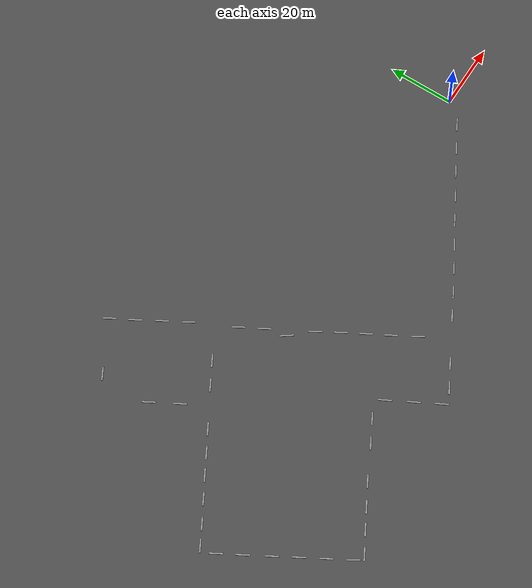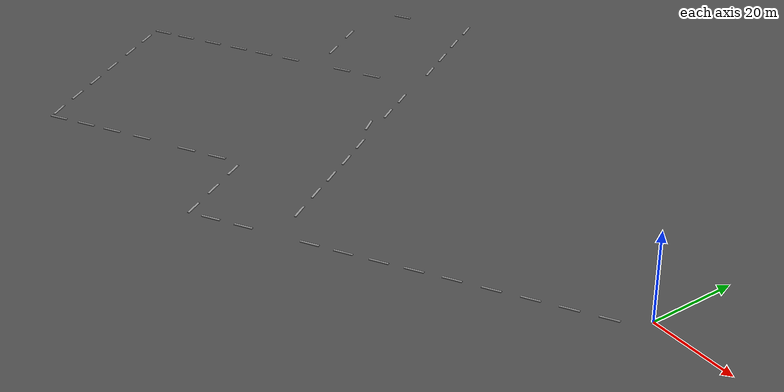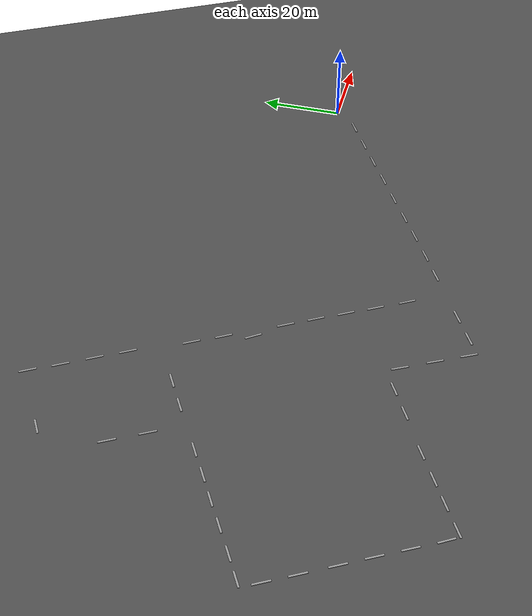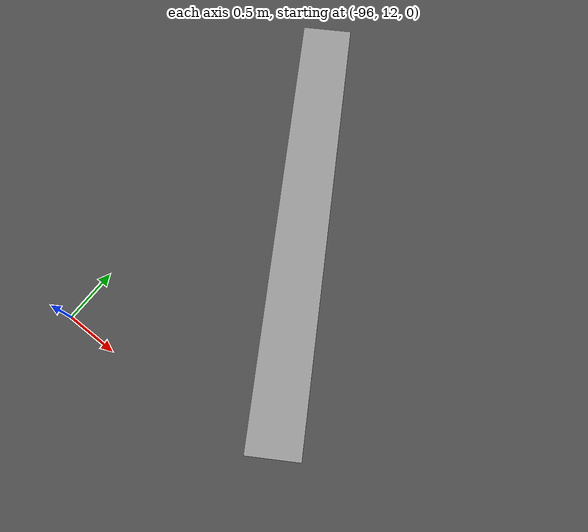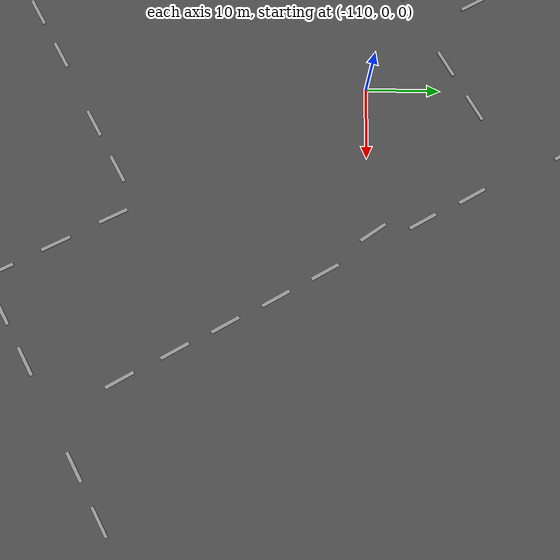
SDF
<sdf version="1.6">
 <world name="default">
  <light name="sun" type="directional">
   <pose>0 0 10 0 -0 0</pose>
   <diffuse>0.8 0.8 0.8 1</diffuse>
   <specular>0.2 0.2 0.2 1</specular>
   <attenuation>
    <range>1000</range>
    <constant>0.9</constant>
    <linear>0.01</linear>
    <quadratic>0.001</quadratic>
   </attenuation>
   <direction>-0.5 0.1 -0.9</direction>
  </light>
  <gravity>0 0 -9.8</gravity>
  <magnetic_field>6e-06 2.3e-05 -4.2e-05</magnetic_field>
  <atmosphere type="adiabatic"/>
  <physics name="default_physics" default="0" type="ode">
   <max_step_size>0.001</max_step_size>
   <real_time_factor>1</real_time_factor>
   <real_time_update_rate>1000</real_time_update_rate>
   <ode>
    <solver>
     <type>quick</type>
     <iters>100</iters>
     <sor>1.3</sor>
     <use_dynamic_moi_rescaling>0</use_dynamic_moi_rescaling>
    </solver>
    <constraints>
     <cfm>0</cfm>
     <erp>0.2</erp>
     <contact_max_correcting_vel>100</contact_max_correcting_vel>
     <contact_surface_layer>0.001</contact_surface_layer>
    </constraints>
   </ode>
  </physics>
  <scene><ambient>0.4 0.4 0.4 1</ambient><background>0.7 0.7 0.7 1</background><shadows>1</shadows></scene>
  <spherical_coordinates>
   <surface_model>EARTH_WGS84</surface_model>
   <latitude_deg>10.7755</latitude_deg>
   <longitude_deg>106.66</longitude_deg>
   <elevation>0.5</elevation>
   <heading_deg>90</heading_deg>
  </spherical_coordinates>
  <model name="asphalt_plane">
   <static>1</static>
   <link name="link">
    <collision name="collision"><geometry><box><size>300.002 399.998 0.1</size></box></geometry></collision>
    <visual name="visual">
     <cast_shadows>0</cast_shadows>
     <geometry><box><size>300.002 399.998 0.1</size></box></geometry>
     <material>
      <script>
       <uri>model://asphalt_plane/materials/scripts</uri>
       <uri>model://asphalt_plane/materials/textures</uri>
       <name>vrc/asphalt</name>
      </script>
     </material>
    </visual>
   </link>
   <pose>-94.7689 -9.25711 0 0 -0 0.505117</pose>
  </model>
  <model name="unit_box">
   <pose>-58.6797 -36.3176 0.134718 0 2e-06 0.511027</pose>
   <link name="link">
    <inertial>
     <mass>1</mass>
     <inertia>
      <ixx>0.166667</ixx>
      <ixy>0</ixy>
      <ixz>0</ixz>
      <iyy>0.166667</iyy>
      <iyz>0</iyz>
      <izz>0.166667</izz>
     </inertia>
    </inertial>
    <collision name="collision"><geometry><box><size>4.10992 0.470748 0.169445</size></box></geometry></collision>
    <visual name="visual">
     <geometry><box><size>4.10992 0.470748 0.169445</size></box></geometry>
     <material>
      <script><name>Gazebo/Grey</name><uri>file://media/materials/scripts/gazebo.material</uri></script>
     </material>
    </visual>
   </link>
  </model>
  <model name="unit_box_clone">
   <pose>-52.2343 -32.8003 0.134718 0 2e-06 0.511043</pose>
   <link name="link">
    <inertial>
     <mass>1</mass>
     <inertia>
      <ixx>0.166667</ixx>
      <ixy>0</ixy>
      <ixz>0</ixz>
      <iyy>0.166667</iyy>
      <iyz>0</iyz>
      <izz>0.166667</izz>
     </inertia>
    </inertial>
    <collision name="collision"><geometry><box><size>4.10992 0.423623 0.169445</size></box></geometry></collision>
    <visual name="visual">
     <geometry><box><size>4.10992 0.423623 0.169445</size></box></geometry>
     <material>
      <script><name>Gazebo/Grey</name><uri>file://media/materials/scripts/gazebo.material</uri></script>
     </material>
    </visual>
   </link>
  </model>
  <model name="unit_box_clone_clone">
   <pose>-45.605 -29.0457 0.134718 0 2e-06 0.511033</pose>
   <link name="link">
    <inertial>
     <mass>1</mass>
     <inertia>
      <ixx>0.166667</ixx>
      <ixy>0</ixy>
      <ixz>0</ixz>
      <iyy>0.166667</iyy>
      <iyz>0</iyz>
      <izz>0.166667</izz>
     </inertia>
    </inertial>
    <collision name="collision"><geometry><box><size>4.10992 0.423624 0.169445</size></box></geometry></collision>
    <visual name="visual">
     <geometry><box><size>4.10992 0.423624 0.169445</size></box></geometry>
     <material>
      <script><name>Gazebo/Grey</name><uri>file://media/materials/scripts/gazebo.material</uri></script>
     </material>
    </visual>
   </link>
  </model>
  <model name="unit_box_clone_clone_0">
   <pose>-39.235 -25.3332 0.134718 -0 2e-06 0.511035</pose>
   <link name="link">
    <inertial>
     <mass>1</mass>
     <inertia>
      <ixx>0.166667</ixx>
      <ixy>0</ixy>
      <ixz>0</ixz>
      <iyy>0.166667</iyy>
      <iyz>0</iyz>
      <izz>0.166667</izz>
     </inertia>
    </inertial>
    <collision name="collision"><geometry><box><size>4.10992 0.423624 0.169445</size></box></geometry></collision>
    <visual name="visual">
     <geometry><box><size>4.10992 0.423624 0.169445</size></box></geometry>
     <material>
      <script><name>Gazebo/Grey</name><uri>file://media/materials/scripts/gazebo.material</uri></script>
     </material>
    </visual>
   </link>
  </model>
  <model name="unit_box_clone_clone_1">
   <pose>-32.4914 -21.3831 0.134718 0 2e-06 0.511036</pose>
   <link name="link">
    <inertial>
     <mass>1</mass>
     <inertia>
      <ixx>0.166667</ixx>
      <ixy>0</ixy>
      <ixz>0</ixz>
      <iyy>0.166667</iyy>
      <iyz>0</iyz>
      <izz>0.166667</izz>
     </inertia>
    </inertial>
    <collision name="collision"><geometry><box><size>4.10992 0.423624 0.169445</size></box></geometry></collision>
    <visual name="visual">
     <geometry><box><size>4.10992 0.423624 0.169445</size></box></geometry>
     <material>
      <script><name>Gazebo/Grey</name><uri>file://media/materials/scripts/gazebo.material</uri></script>
     </material>
    </visual>
   </link>
  </model>
  <model name="unit_box_clone_clone_2">
   <pose>-25.515 -17.4444 0.134718 0 2e-06 0.511038</pose>
   <link name="link">
    <inertial>
     <mass>1</mass>
     <inertia>
      <ixx>0.166667</ixx>
      <ixy>0</ixy>
      <ixz>0</ixz>
      <iyy>0.166667</iyy>
      <iyz>0</iyz>
      <izz>0.166667</izz>
     </inertia>
    </inertial>
    <collision name="collision"><geometry><box><size>4.10992 0.423624 0.169445</size></box></geometry></collision>
    <visual name="visual">
     <geometry><box><size>4.10992 0.423624 0.169445</size></box></geometry>
     <material>
      <script><name>Gazebo/Grey</name><uri>file://media/materials/scripts/gazebo.material</uri></script>
     </material>
    </visual>
   </link>
  </model>
  <model name="unit_box_clone_clone_3">
   <pose>-18.7815 -13.4967 0.134718 0 2e-06 0.511039</pose>
   <link name="link">
    <inertial>
     <mass>1</mass>
     <inertia>
      <ixx>0.166667</ixx>
      <ixy>0</ixy>
      <ixz>0</ixz>
      <iyy>0.166667</iyy>
      <iyz>0</iyz>
      <izz>0.166667</izz>
     </inertia>
    </inertial>
    <collision name="collision"><geometry><box><size>4.10992 0.423624 0.169445</size></box></geometry></collision>
    <visual name="visual">
     <geometry><box><size>4.10992 0.423624 0.169445</size></box></geometry>
     <material>
      <script><name>Gazebo/Grey</name><uri>file://media/materials/scripts/gazebo.material</uri></script>
     </material>
    </visual>
   </link>
  </model>
  <model name="unit_box_clone_clone_4">
   <pose>-12.1267 -9.70198 0.134718 0 2e-06 0.511041</pose>
   <link name="link">
    <inertial>
     <mass>1</mass>
     <inertia>
      <ixx>0.166667</ixx>
      <ixy>0</ixy>
      <ixz>0</ixz>
      <iyy>0.166667</iyy>
      <iyz>0</iyz>
      <izz>0.166667</izz>
     </inertia>
    </inertial>
    <collision name="collision"><geometry><box><size>4.10992 0.423624 0.169445</size></box></geometry></collision>
    <visual name="visual">
     <geometry><box><size>4.10992 0.423624 0.169445</size></box></geometry>
     <material>
      <script><name>Gazebo/Grey</name><uri>file://media/materials/scripts/gazebo.material</uri></script>
     </material>
    </visual>
   </link>
  </model>
  <model name="unit_box_clone_clone_5">
   <pose>-5.35609 -5.84925 0.134718 -0 2e-06 0.511042</pose>
   <link name="link">
    <inertial>
     <mass>1</mass>
     <inertia>
      <ixx>0.166667</ixx>
      <ixy>0</ixy>
      <ixz>0</ixz>
      <iyy>0.166667</iyy>
      <iyz>0</iyz>
      <izz>0.166667</izz>
     </inertia>
    </inertial>
    <collision name="collision"><geometry><box><size>4.10992 0.423624 0.169445</size></box></geometry></collision>
    <visual name="visual">
     <geometry><box><size>4.10992 0.423624 0.169445</size></box></geometry>
     <material>
      <script><name>Gazebo/Grey</name><uri>file://media/materials/scripts/gazebo.material</uri></script>
     </material>
    </visual>
   </link>
  </model>
  <model name="unit_box_clone_0">
   <pose>-71.6412 -43.4655 0.134718 0 2e-06 0.511022</pose>
   <link name="link">
    <inertial>
     <mass>1</mass>
     <inertia>
      <ixx>0.166667</ixx>
      <ixy>0</ixy>
      <ixz>0</ixz>
      <iyy>0.166667</iyy>
      <iyz>0</iyz>
      <izz>0.166667</izz>
     </inertia>
    </inertial>
    <collision name="collision"><geometry><box><size>4.10992 0.470749 0.169445</size></box></geometry></collision>
    <visual name="visual">
     <geometry><box><size>4.10992 0.470749 0.169445</size></box></geometry>
     <material>
      <script><name>Gazebo/Grey</name><uri>file://media/materials/scripts/gazebo.material</uri></script>
     </material>
    </visual>
   </link>
  </model>
  <model name="unit_box_clone_1">
   <pose>-78.1131 -47.0766 0.134718 0 2e-06 0.511024</pose>
   <link name="link">
    <inertial>
     <mass>1</mass>
     <inertia>
      <ixx>0.166667</ixx>
      <ixy>0</ixy>
      <ixz>0</ixz>
      <iyy>0.166667</iyy>
      <iyz>0</iyz>
      <izz>0.166667</izz>
     </inertia>
    </inertial>
    <collision name="collision"><geometry><box><size>4.10992 0.470749 0.169445</size></box></geometry></collision>
    <visual name="visual">
     <geometry><box><size>4.10992 0.470749 0.169445</size></box></geometry>
     <material>
      <script><name>Gazebo/Grey</name><uri>file://media/materials/scripts/gazebo.material</uri></script>
     </material>
    </visual>
   </link>
  </model>
  <model name="unit_box_clone_1_clone">
   <pose>-83.439 -47.892 0.134704 -0 -9e-06 2.05256</pose>
   <link name="link">
    <inertial>
     <mass>1</mass>
     <inertia>
      <ixx>0.166667</ixx>
      <ixy>0</ixy>
      <ixz>0</ixz>
      <iyy>0.166667</iyy>
      <iyz>0</iyz>
      <izz>0.166667</izz>
     </inertia>
    </inertial>
    <collision name="collision"><geometry><box><size>4.10992 0.470749 0.169445</size></box></geometry></collision>
    <visual name="visual">
     <geometry><box><size>4.10992 0.470749 0.169445</size></box></geometry>
     <material>
      <script><name>Gazebo/Grey</name><uri>file://media/materials/scripts/gazebo.material</uri></script>
     </material>
    </visual>
   </link>
  </model>
  <model name="unit_box_clone_1_clone_clone">
   <pose>-87.2549 -40.7783 0.134704 -0 -9e-06 2.05256</pose>
   <link name="link">
    <inertial>
     <mass>1</mass>
     <inertia>
      <ixx>0.166667</ixx>
      <ixy>0</ixy>
      <ixz>0</ixz>
      <iyy>0.166667</iyy>
      <iyz>0</iyz>
      <izz>0.166667</izz>
     </inertia>
    </inertial>
    <collision name="collision"><geometry><box><size>4.10992 0.470749 0.169445</size></box></geometry></collision>
    <visual name="visual">
     <geometry><box><size>4.10992 0.470749 0.169445</size></box></geometry>
     <material>
      <script><name>Gazebo/Grey</name><uri>file://media/materials/scripts/gazebo.material</uri></script>
     </material>
    </visual>
   </link>
  </model>
  <model name="unit_box_clone_1_clone_clone_0">
   <pose>-91.1868 -33.4938 0.134704 0 -9e-06 2.05257</pose>
   <link name="link">
    <inertial>
     <mass>1</mass>
     <inertia>
      <ixx>0.166667</ixx>
      <ixy>0</ixy>
      <ixz>0</ixz>
      <iyy>0.166667</iyy>
      <iyz>0</iyz>
      <izz>0.166667</izz>
     </inertia>
    </inertial>
    <collision name="collision"><geometry><box><size>4.10992 0.470749 0.169445</size></box></geometry></collision>
    <visual name="visual">
     <geometry><box><size>4.10992 0.470749 0.169445</size></box></geometry>
     <material>
      <script><name>Gazebo/Grey</name><uri>file://media/materials/scripts/gazebo.material</uri></script>
     </material>
    </visual>
   </link>
  </model>
  <model name="unit_box_clone_1_clone_0">
   <pose>-97.8327 -33.3432 0.134718 0 2e-06 0.511024</pose>
   <link name="link">
    <inertial>
     <mass>1</mass>
     <inertia>
      <ixx>0.166667</ixx>
      <ixy>0</ixy>
      <ixz>0</ixz>
      <iyy>0.166667</iyy>
      <iyz>0</iyz>
      <izz>0.166667</izz>
     </inertia>
    </inertial>
    <collision name="collision"><geometry><box><size>4.10992 0.470749 0.169445</size></box></geometry></collision>
    <visual name="visual">
     <geometry><box><size>4.10992 0.470749 0.169445</size></box></geometry>
     <material>
      <script><name>Gazebo/Grey</name><uri>file://media/materials/scripts/gazebo.material</uri></script>
     </material>
    </visual>
   </link>
  </model>
  <model name="unit_box_clone_1_clone_1">
   <pose>-104.358 -36.9163 0.134718 0 2e-06 0.511026</pose>
   <link name="link">
    <inertial>
     <mass>1</mass>
     <inertia>
      <ixx>0.166667</ixx>
      <ixy>0</ixy>
      <ixz>0</ixz>
      <iyy>0.166667</iyy>
      <iyz>0</iyz>
      <izz>0.166667</izz>
     </inertia>
    </inertial>
    <collision name="collision"><geometry><box><size>4.10992 0.470749 0.169445</size></box></geometry></collision>
    <visual name="visual">
     <geometry><box><size>4.10992 0.470749 0.169445</size></box></geometry>
     <material>
      <script><name>Gazebo/Grey</name><uri>file://media/materials/scripts/gazebo.material</uri></script>
     </material>
    </visual>
   </link>
  </model>
  <model name="unit_box_clone_1_clone_1_clone">
   <pose>-114.497 -42.152 0.134718 0 2e-06 0.511026</pose>
   <link name="link">
    <inertial>
     <mass>1</mass>
     <inertia>
      <ixx>0.166667</ixx>
      <ixy>0</ixy>
      <ixz>0</ixz>
      <iyy>0.166667</iyy>
      <iyz>0</iyz>
      <izz>0.166667</izz>
     </inertia>
    </inertial>
    <collision name="collision"><geometry><box><size>4.10992 0.470749 0.169445</size></box></geometry></collision>
    <visual name="visual">
     <geometry><box><size>4.10992 0.470749 0.169445</size></box></geometry>
     <material>
      <script><name>Gazebo/Grey</name><uri>file://media/materials/scripts/gazebo.material</uri></script>
     </material>
    </visual>
   </link>
  </model>
  <model name="unit_box_clone_1_clone_1_clone_0">
   <pose>-121.043 -45.8423 0.134718 0 2e-06 0.511029</pose>
   <link name="link">
    <inertial>
     <mass>1</mass>
     <inertia>
      <ixx>0.166667</ixx>
      <ixy>0</ixy>
      <ixz>0</ixz>
      <iyy>0.166667</iyy>
      <iyz>0</iyz>
      <izz>0.166667</izz>
     </inertia>
    </inertial>
    <collision name="collision"><geometry><box><size>4.10992 0.470749 0.169445</size></box></geometry></collision>
    <visual name="visual">
     <geometry><box><size>4.10992 0.470749 0.169445</size></box></geometry>
     <material>
      <script><name>Gazebo/Grey</name><uri>file://media/materials/scripts/gazebo.material</uri></script>
     </material>
    </visual>
   </link>
  </model>
  <model name="unit_box_clone_1_clone_1_clone_1">
   <pose>-126.85 -49.0942 0.134718 0 2e-06 0.51103</pose>
   <link name="link">
    <inertial>
     <mass>1</mass>
     <inertia>
      <ixx>0.166667</ixx>
      <ixy>0</ixy>
      <ixz>0</ixz>
      <iyy>0.166667</iyy>
      <iyz>0</iyz>
      <izz>0.166667</izz>
     </inertia>
    </inertial>
    <collision name="collision"><geometry><box><size>4.10992 0.470749 0.169445</size></box></geometry></collision>
    <visual name="visual">
     <geometry><box><size>4.10992 0.470749 0.169445</size></box></geometry>
     <material>
      <script><name>Gazebo/Grey</name><uri>file://media/materials/scripts/gazebo.material</uri></script>
     </material>
    </visual>
   </link>
  </model>
  <model name="unit_box_clone_1_clone_clone_1">
   <pose>-155.018 -17.5806 0.134723 0 -0 2.08644</pose>
   <link name="link">
    <inertial>
     <mass>1</mass>
     <inertia>
      <ixx>0.166667</ixx>
      <ixy>0</ixy>
      <ixz>0</ixz>
      <iyy>0.166667</iyy>
      <iyz>0</iyz>
      <izz>0.166667</izz>
     </inertia>
    </inertial>
    <collision name="collision"><geometry><box><size>4.10992 0.470749 0.169445</size></box></geometry></collision>
    <visual name="visual">
     <geometry><box><size>4.10992 0.470749 0.169445</size></box></geometry>
     <material>
      <script><name>Gazebo/Grey</name><uri>file://media/materials/scripts/gazebo.material</uri></script>
     </material>
    </visual>
   </link>
  </model>
  <model name="unit_box_clone_1_clone_clone_2">
   <pose>-151.376 -24.066 0.134723 0 -0 2.08811</pose>
   <link name="link">
    <inertial>
     <mass>1</mass>
     <inertia>
      <ixx>0.166667</ixx>
      <ixy>0</ixy>
      <ixz>0</ixz>
      <iyy>0.166667</iyy>
      <iyz>0</iyz>
      <izz>0.166667</izz>
     </inertia>
    </inertial>
    <collision name="collision"><geometry><box><size>4.10992 0.470749 0.169445</size></box></geometry></collision>
    <visual name="visual">
     <geometry><box><size>4.10992 0.470749 0.169445</size></box></geometry>
     <material>
      <script><name>Gazebo/Grey</name><uri>file://media/materials/scripts/gazebo.material</uri></script>
     </material>
    </visual>
   </link>
  </model>
  <model name="unit_box_clone_1_clone_clone_1_clone_0">
   <pose>-143.528 -37.7175 0.134723 0 -0 2.08644</pose>
   <link name="link">
    <inertial>
     <mass>1</mass>
     <inertia>
      <ixx>0.166667</ixx>
      <ixy>0</ixy>
      <ixz>0</ixz>
      <iyy>0.166667</iyy>
      <iyz>0</iyz>
      <izz>0.166667</izz>
     </inertia>
    </inertial>
    <collision name="collision"><geometry><box><size>4.10992 0.470749 0.169445</size></box></geometry></collision>
    <visual name="visual">
     <geometry><box><size>4.10992 0.470749 0.169445</size></box></geometry>
     <material>
      <script><name>Gazebo/Grey</name><uri>file://media/materials/scripts/gazebo.material</uri></script>
     </material>
    </visual>
   </link>
  </model>
  <model name="unit_box_clone_1_clone_clone_1_clone_1">
   <pose>-139.771 -44.33 0.134723 0 -0 2.08644</pose>
   <link name="link">
    <inertial>
     <mass>1</mass>
     <inertia>
      <ixx>0.166667</ixx>
      <ixy>0</ixy>
      <ixz>0</ixz>
      <iyy>0.166667</iyy>
      <iyz>0</iyz>
      <izz>0.166667</izz>
     </inertia>
    </inertial>
    <collision name="collision"><geometry><box><size>4.10992 0.470749 0.169445</size></box></geometry></collision>
    <visual name="visual">
     <geometry><box><size>4.10992 0.470749 0.169445</size></box></geometry>
     <material>
      <script><name>Gazebo/Grey</name><uri>file://media/materials/scripts/gazebo.material</uri></script>
     </material>
    </visual>
   </link>
  </model>
  <model name="unit_box_clone_1_clone_clone_1_clone_2">
   <pose>-136.03 -50.9037 0.134723 0 -0 2.12661</pose>
   <link name="link">
    <inertial>
     <mass>1</mass>
     <inertia>
      <ixx>0.166667</ixx>
      <ixy>0</ixy>
      <ixz>0</ixz>
      <iyy>0.166667</iyy>
      <iyz>0</iyz>
      <izz>0.166667</izz>
     </inertia>
    </inertial>
    <collision name="collision"><geometry><box><size>4.10992 0.470749 0.169445</size></box></geometry></collision>
    <visual name="visual">
     <geometry><box><size>4.10992 0.470749 0.169445</size></box></geometry>
     <material>
      <script><name>Gazebo/Grey</name><uri>file://media/materials/scripts/gazebo.material</uri></script>
     </material>
    </visual>
   </link>
  </model>
  <model name="unit_box_clone_1_clone_1_clone_1_clone">
   <pose>-132.933 -52.5796 0.134718 0 2e-06 0.511029</pose>
   <link name="link">
    <inertial>
     <mass>1</mass>
     <inertia>
      <ixx>0.166667</ixx>
      <ixy>0</ixy>
      <ixz>0</ixz>
      <iyy>0.166667</iyy>
      <iyz>0</iyz>
      <izz>0.166667</izz>
     </inertia>
    </inertial>
    <collision name="collision"><geometry><box><size>4.10992 0.470749 0.169445</size></box></geometry></collision>
    <visual name="visual">
     <geometry><box><size>4.10992 0.470749 0.169445</size></box></geometry>
     <material>
      <script><name>Gazebo/Grey</name><uri>file://media/materials/scripts/gazebo.material</uri></script>
     </material>
    </visual>
   </link>
  </model>
  <model name="unit_box_clone_1_clone_1_clone_0_clone">
   <pose>-137.636 -2.42582 0.134718 0 2e-06 0.511031</pose>
   <link name="link">
    <inertial>
     <mass>1</mass>
     <inertia>
      <ixx>0.166667</ixx>
      <ixy>0</ixy>
      <ixz>0</ixz>
      <iyy>0.166667</iyy>
      <iyz>0</iyz>
      <izz>0.166667</izz>
     </inertia>
    </inertial>
    <collision name="collision"><geometry><box><size>4.10992 0.470749 0.169445</size></box></geometry></collision>
    <visual name="visual">
     <geometry><box><size>4.10992 0.470749 0.169445</size></box></geometry>
     <material>
      <script><name>Gazebo/Grey</name><uri>file://media/materials/scripts/gazebo.material</uri></script>
     </material>
    </visual>
   </link>
  </model>
  <model name="unit_box_clone_1_clone_1_clone_0_clone_0">
   <pose>-143.643 -5.91841 0.134718 0 2e-06 0.511032</pose>
   <link name="link">
    <inertial>
     <mass>1</mass>
     <inertia>
      <ixx>0.166667</ixx>
      <ixy>0</ixy>
      <ixz>0</ixz>
      <iyy>0.166667</iyy>
      <iyz>0</iyz>
      <izz>0.166667</izz>
     </inertia>
    </inertial>
    <collision name="collision"><geometry><box><size>4.10992 0.470749 0.169445</size></box></geometry></collision>
    <visual name="visual">
     <geometry><box><size>4.10992 0.470749 0.169445</size></box></geometry>
     <material>
      <script><name>Gazebo/Grey</name><uri>file://media/materials/scripts/gazebo.material</uri></script>
     </material>
    </visual>
   </link>
  </model>
  <model name="unit_box_clone_1_clone_1_clone_0_clone_1">
   <pose>-149.954 -9.56573 0.134718 0 2e-06 0.511034</pose>
   <link name="link">
    <inertial>
     <mass>1</mass>
     <inertia>
      <ixx>0.166667</ixx>
      <ixy>0</ixy>
      <ixz>0</ixz>
      <iyy>0.166667</iyy>
      <iyz>0</iyz>
      <izz>0.166667</izz>
     </inertia>
    </inertial>
    <collision name="collision"><geometry><box><size>4.10992 0.470749 0.169445</size></box></geometry></collision>
    <visual name="visual">
     <geometry><box><size>4.10992 0.470749 0.169445</size></box></geometry>
     <material>
      <script><name>Gazebo/Grey</name><uri>file://media/materials/scripts/gazebo.material</uri></script>
     </material>
    </visual>
   </link>
  </model>
  <model name="unit_box_clone_1_clone_1_clone_0_clone_clone">
   <pose>-131.788 0.845101 0.134718 0 2e-06 0.51103</pose>
   <link name="link">
    <inertial>
     <mass>1</mass>
     <inertia>
      <ixx>0.166667</ixx>
      <ixy>0</ixy>
      <ixz>0</ixz>
      <iyy>0.166667</iyy>
      <iyz>0</iyz>
      <izz>0.166667</izz>
     </inertia>
    </inertial>
    <collision name="collision"><geometry><box><size>4.10992 0.470749 0.169445</size></box></geometry></collision>
    <visual name="visual">
     <geometry><box><size>4.10992 0.470749 0.169445</size></box></geometry>
     <material>
      <script><name>Gazebo/Grey</name><uri>file://media/materials/scripts/gazebo.material</uri></script>
     </material>
    </visual>
   </link>
  </model>
  <model name="unit_box_clone_1_clone_1_clone_0_clone_clone_0">
   <pose>-125.667 4.39829 0.134718 0 2e-06 0.511032</pose>
   <link name="link">
    <inertial>
     <mass>1</mass>
     <inertia>
      <ixx>0.166667</ixx>
      <ixy>0</ixy>
      <ixz>0</ixz>
      <iyy>0.166667</iyy>
      <iyz>0</iyz>
      <izz>0.166667</izz>
     </inertia>
    </inertial>
    <collision name="collision"><geometry><box><size>4.10992 0.470749 0.169445</size></box></geometry></collision>
    <visual name="visual">
     <geometry><box><size>4.10992 0.470749 0.169445</size></box></geometry>
     <material>
      <script><name>Gazebo/Grey</name><uri>file://media/materials/scripts/gazebo.material</uri></script>
     </material>
    </visual>
   </link>
  </model>
  <model name="unit_box_clone_1_clone_clone_1_clone_3">
   <pose>-123.556 15.3325 0.134723 0 -0 2.08643</pose>
   <link name="link">
    <inertial>
     <mass>1</mass>
     <inertia>
      <ixx>0.166667</ixx>
      <ixy>0</ixy>
      <ixz>0</ixz>
      <iyy>0.166667</iyy>
      <iyz>0</iyz>
      <izz>0.166667</izz>
     </inertia>
    </inertial>
    <collision name="collision"><geometry><box><size>4.10992 0.470749 0.169445</size></box></geometry></collision>
    <visual name="visual">
     <geometry><box><size>4.10992 0.470749 0.169445</size></box></geometry>
     <material>
      <script><name>Gazebo/Grey</name><uri>file://media/materials/scripts/gazebo.material</uri></script>
     </material>
    </visual>
   </link>
  </model>
  <model name="unit_box_clone_1_clone_clone_1_clone_4">
   <pose>-127.878 23.094 0.134723 0 -0 2.08643</pose>
   <link name="link">
    <inertial>
     <mass>1</mass>
     <inertia>
      <ixx>0.166667</ixx>
      <ixy>0</ixy>
      <ixz>0</ixz>
      <iyy>0.166667</iyy>
      <iyz>0</iyz>
      <izz>0.166667</izz>
     </inertia>
    </inertial>
    <collision name="collision"><geometry><box><size>4.10992 0.470749 0.169445</size></box></geometry></collision>
    <visual name="visual">
     <geometry><box><size>4.10992 0.470749 0.169445</size></box></geometry>
     <material>
      <script><name>Gazebo/Grey</name><uri>file://media/materials/scripts/gazebo.material</uri></script>
     </material>
    </visual>
   </link>
  </model>
  <model name="unit_box_clone_1_clone_1_clone_0_clone_clone_0_clone">
   <pose>-114.159 11.0702 0.134718 0 2e-06 0.511032</pose>
   <link name="link">
    <inertial>
     <mass>1</mass>
     <inertia>
      <ixx>0.166667</ixx>
      <ixy>0</ixy>
      <ixz>0</ixz>
      <iyy>0.166667</iyy>
      <iyz>0</iyz>
      <izz>0.166667</izz>
     </inertia>
    </inertial>
    <collision name="collision"><geometry><box><size>4.10992 0.470749 0.169445</size></box></geometry></collision>
    <visual name="visual">
     <geometry><box><size>4.10992 0.470749 0.169445</size></box></geometry>
     <material>
      <script><name>Gazebo/Grey</name><uri>file://media/materials/scripts/gazebo.material</uri></script>
     </material>
    </visual>
   </link>
  </model>
  <model name="unit_box_clone_1_clone_1_clone_0_clone_clone_0_clone_0">
   <pose>-107.629 14.747 0.134718 0 2e-06 0.511034</pose>
   <link name="link">
    <inertial>
     <mass>1</mass>
     <inertia>
      <ixx>0.166667</ixx>
      <ixy>0</ixy>
      <ixz>0</ixz>
      <iyy>0.166667</iyy>
      <iyz>0</iyz>
      <izz>0.166667</izz>
     </inertia>
    </inertial>
    <collision name="collision"><geometry><box><size>4.10992 0.470749 0.169445</size></box></geometry></collision>
    <visual name="visual">
     <geometry><box><size>4.10992 0.470749 0.169445</size></box></geometry>
     <material>
      <script><name>Gazebo/Grey</name><uri>file://media/materials/scripts/gazebo.material</uri></script>
     </material>
    </visual>
   </link>
  </model>
  <model name="unit_box_clone_1_clone_1_clone_0_clone_clone_0_clone_clone">
   <pose>-127.827 39.0864 0.134718 0 2e-06 0.511033</pose>
   <link name="link">
    <inertial>
     <mass>1</mass>
     <inertia>
      <ixx>0.166667</ixx>
      <ixy>0</ixy>
      <ixz>0</ixz>
      <iyy>0.166667</iyy>
      <iyz>0</iyz>
      <izz>0.166667</izz>
     </inertia>
    </inertial>
    <collision name="collision"><geometry><box><size>4.10992 0.470749 0.169445</size></box></geometry></collision>
    <visual name="visual">
     <geometry><box><size>4.10992 0.470749 0.169445</size></box></geometry>
     <material>
      <script><name>Gazebo/Grey</name><uri>file://media/materials/scripts/gazebo.material</uri></script>
     </material>
    </visual>
   </link>
  </model>
  <model name="unit_box_clone_1_clone_clone_1_clone_3_clone_1">
   <pose>-112.548 46.8836 0.134723 0 -0 2.10376</pose>
   <link name="link">
    <inertial>
     <mass>1</mass>
     <inertia>
      <ixx>0.166667</ixx>
      <ixy>0</ixy>
      <ixz>0</ixz>
      <iyy>0.166667</iyy>
      <iyz>0</iyz>
      <izz>0.166667</izz>
     </inertia>
    </inertial>
    <collision name="collision"><geometry><box><size>4.10992 0.470749 0.169445</size></box></geometry></collision>
    <visual name="visual">
     <geometry><box><size>4.10992 0.470749 0.169445</size></box></geometry>
     <material>
      <script><name>Gazebo/Grey</name><uri>file://media/materials/scripts/gazebo.material</uri></script>
     </material>
    </visual>
   </link>
  </model>
  <model name="unit_box_clone_1_clone_clone_1_clone_3_clone_1_clone">
   <pose>-108.996 40.3715 0.134723 0 -0 2.10376</pose>
   <link name="link">
    <inertial>
     <mass>1</mass>
     <inertia>
      <ixx>0.166667</ixx>
      <ixy>0</ixy>
      <ixz>0</ixz>
      <iyy>0.166667</iyy>
      <iyz>0</iyz>
      <izz>0.166667</izz>
     </inertia>
    </inertial>
    <collision name="collision"><geometry><box><size>4.10992 0.470749 0.169445</size></box></geometry></collision>
    <visual name="visual">
     <geometry><box><size>4.10992 0.470749 0.169445</size></box></geometry>
     <material>
      <script><name>Gazebo/Grey</name><uri>file://media/materials/scripts/gazebo.material</uri></script>
     </material>
    </visual>
   </link>
  </model>
  <model name="unit_box_clone_1_clone_clone_1_clone_3_clone_1_clone_0">
   <pose>-105.082 33.6606 0.134723 0 -0 2.10376</pose>
   <link name="link">
    <inertial>
     <mass>1</mass>
     <inertia>
      <ixx>0.166667</ixx>
      <ixy>0</ixy>
      <ixz>0</ixz>
      <iyy>0.166667</iyy>
      <iyz>0</iyz>
      <izz>0.166667</izz>
     </inertia>
    </inertial>
    <collision name="collision"><geometry><box><size>4.10992 0.470749 0.169445</size></box></geometry></collision>
    <visual name="visual">
     <geometry><box><size>4.10992 0.470749 0.169445</size></box></geometry>
     <material>
      <script><name>Gazebo/Grey</name><uri>file://media/materials/scripts/gazebo.material</uri></script>
     </material>
    </visual>
   </link>
  </model>
  <model name="unit_box_clone_1_clone_clone_1_clone_3_clone_1_clone_1">
   <pose>-101.301 27.0073 0.134723 0 -0 2.10376</pose>
   <link name="link">
    <inertial>
     <mass>1</mass>
     <inertia>
      <ixx>0.166667</ixx>
      <ixy>0</ixy>
      <ixz>0</ixz>
      <iyy>0.166667</iyy>
      <iyz>0</iyz>
      <izz>0.166667</izz>
     </inertia>
    </inertial>
    <collision name="collision"><geometry><box><size>4.10992 0.470749 0.169445</size></box></geometry></collision>
    <visual name="visual">
     <geometry><box><size>4.10992 0.470749 0.169445</size></box></geometry>
     <material>
      <script><name>Gazebo/Grey</name><uri>file://media/materials/scripts/gazebo.material</uri></script>
     </material>
    </visual>
   </link>
  </model>
  <model name="unit_box_clone_1_clone_clone_1_clone_3_clone_1_clone_1_clone">
   <pose>-94.8723 13.932 0.134723 0 -0 2.10377</pose>
   <link name="link">
    <inertial>
     <mass>1</mass>
     <inertia>
      <ixx>0.166667</ixx>
      <ixy>0</ixy>
      <ixz>0</ixz>
      <iyy>0.166667</iyy>
      <iyz>0</iyz>
      <izz>0.166667</izz>
     </inertia>
    </inertial>
    <collision name="collision"><geometry><box><size>4.10992 0.470749 0.169445</size></box></geometry></collision>
    <visual name="visual">
     <geometry><box><size>4.10992 0.470749 0.169445</size></box></geometry>
     <material>
      <script><name>Gazebo/Grey</name><uri>file://media/materials/scripts/gazebo.material</uri></script>
     </material>
    </visual>
   </link>
  </model>
  <model name="unit_box_clone_1_clone_clone_1_clone_3_clone_1_clone_1_clone_0">
   <pose>-91.2227 7.30912 0.134723 0 -0 2.10377</pose>
   <link name="link">
    <inertial>
     <mass>1</mass>
     <inertia>
      <ixx>0.166667</ixx>
      <ixy>0</ixy>
      <ixz>0</ixz>
      <iyy>0.166667</iyy>
      <iyz>0</iyz>
      <izz>0.166667</izz>
     </inertia>
    </inertial>
    <collision name="collision"><geometry><box><size>4.10992 0.470749 0.169445</size></box></geometry></collision>
    <visual name="visual">
     <geometry><box><size>4.10992 0.470749 0.169445</size></box></geometry>
     <material>
      <script><name>Gazebo/Grey</name><uri>file://media/materials/scripts/gazebo.material</uri></script>
     </material>
    </visual>
   </link>
  </model>
  <model name="unit_box_clone_1_clone_clone_1_clone_3_clone_1_clone_1_clone_1">
   <pose>-89.566 0.737941 0.134718 -0 -2e-06 2.19138</pose>
   <link name="link">
    <inertial>
     <mass>1</mass>
     <inertia>
      <ixx>0.166667</ixx>
      <ixy>0</ixy>
      <ixz>0</ixz>
      <iyy>0.166667</iyy>
      <iyz>0</iyz>
      <izz>0.166667</izz>
     </inertia>
    </inertial>
    <collision name="collision"><geometry><box><size>4.10992 0.470749 0.169445</size></box></geometry></collision>
    <visual name="visual">
     <geometry><box><size>4.10992 0.470749 0.169445</size></box></geometry>
     <material>
      <script><name>Gazebo/Grey</name><uri>file://media/materials/scripts/gazebo.material</uri></script>
     </material>
    </visual>
   </link>
  </model>
  <model name="unit_box_clone_1_clone_clone_1_clone_3_clone_1_clone_1_clone_2">
   <pose>-84.0889 -5.53613 0.134723 0 -0 2.10377</pose>
   <link name="link">
    <inertial>
     <mass>1</mass>
     <inertia>
      <ixx>0.166667</ixx>
      <ixy>0</ixy>
      <ixz>0</ixz>
      <iyy>0.166667</iyy>
      <iyz>0</iyz>
      <izz>0.166667</izz>
     </inertia>
    </inertial>
    <collision name="collision"><geometry><box><size>4.10992 0.470749 0.169445</size></box></geometry></collision>
    <visual name="visual">
     <geometry><box><size>4.10992 0.470749 0.169445</size></box></geometry>
     <material>
      <script><name>Gazebo/Grey</name><uri>file://media/materials/scripts/gazebo.material</uri></script>
     </material>
    </visual>
   </link>
  </model>
  <model name="unit_box_clone_1_clone_clone_1_clone_3_clone_1_clone_1_clone_3">
   <pose>-80.415 -11.8754 0.134723 0 -0 2.10377</pose>
   <link name="link">
    <inertial>
     <mass>1</mass>
     <inertia>
      <ixx>0.166667</ixx>
      <ixy>0</ixy>
      <ixz>0</ixz>
      <iyy>0.166667</iyy>
      <iyz>0</iyz>
      <izz>0.166667</izz>
     </inertia>
    </inertial>
    <collision name="collision"><geometry><box><size>4.10992 0.470749 0.169445</size></box></geometry></collision>
    <visual name="visual">
     <geometry><box><size>4.10992 0.470749 0.169445</size></box></geometry>
     <material>
      <script><name>Gazebo/Grey</name><uri>file://media/materials/scripts/gazebo.material</uri></script>
     </material>
    </visual>
   </link>
  </model>
  <model name="unit_box_clone_1_clone_clone_1_clone_3_clone_1_clone_1_clone_4">
   <pose>-76.8399 -18.2667 0.134723 0 -0 2.10377</pose>
   <link name="link">
    <inertial>
     <mass>1</mass>
     <inertia>
      <ixx>0.166667</ixx>
      <ixy>0</ixy>
      <ixz>0</ixz>
      <iyy>0.166667</iyy>
      <iyz>0</iyz>
      <izz>0.166667</izz>
     </inertia>
    </inertial>
    <collision name="collision"><geometry><box><size>4.10992 0.470749 0.169445</size></box></geometry></collision>
    <visual name="visual">
     <geometry><box><size>4.10992 0.470749 0.169445</size></box></geometry>
     <material>
      <script><name>Gazebo/Grey</name><uri>file://media/materials/scripts/gazebo.material</uri></script>
     </material>
    </visual>
   </link>
  </model>
  <model name="unit_box_clone_1_clone_clone_1_clone_3_clone_1_clone_1_clone_4_clone">
   <pose>-73.3618 -24.5777 0.134723 0 -0 2.10377</pose>
   <link name="link">
    <inertial>
     <mass>1</mass>
     <inertia>
      <ixx>0.166667</ixx>
      <ixy>0</ixy>
      <ixz>0</ixz>
      <iyy>0.166667</iyy>
      <iyz>0</iyz>
      <izz>0.166667</izz>
     </inertia>
    </inertial>
    <collision name="collision"><geometry><box><size>4.10992 0.470749 0.169445</size></box></geometry></collision>
    <visual name="visual">
     <geometry><box><size>4.10992 0.470749 0.169445</size></box></geometry>
     <material>
      <script><name>Gazebo/Grey</name><uri>file://media/materials/scripts/gazebo.material</uri></script>
     </material>
    </visual>
   </link>
  </model>
  <model name="unit_box_clone_1_clone_clone_1_clone_3_clone_1_clone_1_clone_4_clone_clone">
   <pose>-69.5081 -31.3678 0.134723 0 -0 2.10377</pose>
   <link name="link">
    <inertial>
     <mass>1</mass>
     <inertia>
      <ixx>0.166667</ixx>
      <ixy>0</ixy>
      <ixz>0</ixz>
      <iyy>0.166667</iyy>
      <iyz>0</iyz>
      <izz>0.166667</izz>
     </inertia>
    </inertial>
    <collision name="collision"><geometry><box><size>4.10992 0.470749 0.169445</size></box></geometry></collision>
    <visual name="visual">
     <geometry><box><size>4.10992 0.470749 0.169445</size></box></geometry>
     <material>
      <script><name>Gazebo/Grey</name><uri>file://media/materials/scripts/gazebo.material</uri></script>
     </material>
    </visual>
   </link>
  </model>
  <model name="unit_box_clone_1_clone_clone_2_clone">
   <pose>-147.301 -31.1806 0.134723 0 -0 2.08811</pose>
   <link name="link">
    <inertial>
     <mass>1</mass>
     <inertia>
      <ixx>0.166667</ixx>
      <ixy>0</ixy>
      <ixz>0</ixz>
      <iyy>0.166667</iyy>
      <iyz>0</iyz>
      <izz>0.166667</izz>
     </inertia>
    </inertial>
    <collision name="collision"><geometry><box><size>4.10992 0.470749 0.169445</size></box></geometry></collision>
    <visual name="visual">
     <geometry><box><size>4.10992 0.470749 0.169445</size></box></geometry>
     <material>
      <script><name>Gazebo/Grey</name><uri>file://media/materials/scripts/gazebo.material</uri></script>
     </material>
    </visual>
   </link>
  </model>
  <model name="unit_box_clone_1_clone_1_clone_0_clone_1_clone">
   <pose>-155.514 -12.6413 0.134718 -0 2e-06 0.511035</pose>
   <link name="link">
    <inertial>
     <mass>1</mass>
     <inertia>
      <ixx>0.166667</ixx>
      <ixy>0</ixy>
      <ixz>0</ixz>
      <iyy>0.166667</iyy>
      <iyz>0</iyz>
      <izz>0.166667</izz>
     </inertia>
    </inertial>
    <collision name="collision"><geometry><box><size>4.10992 0.470749 0.169445</size></box></geometry></collision>
    <visual name="visual">
     <geometry><box><size>4.10992 0.470749 0.169445</size></box></geometry>
     <material>
      <script><name>Gazebo/Grey</name><uri>file://media/materials/scripts/gazebo.material</uri></script>
     </material>
    </visual>
   </link>
  </model>
 </world>
</sdf>
